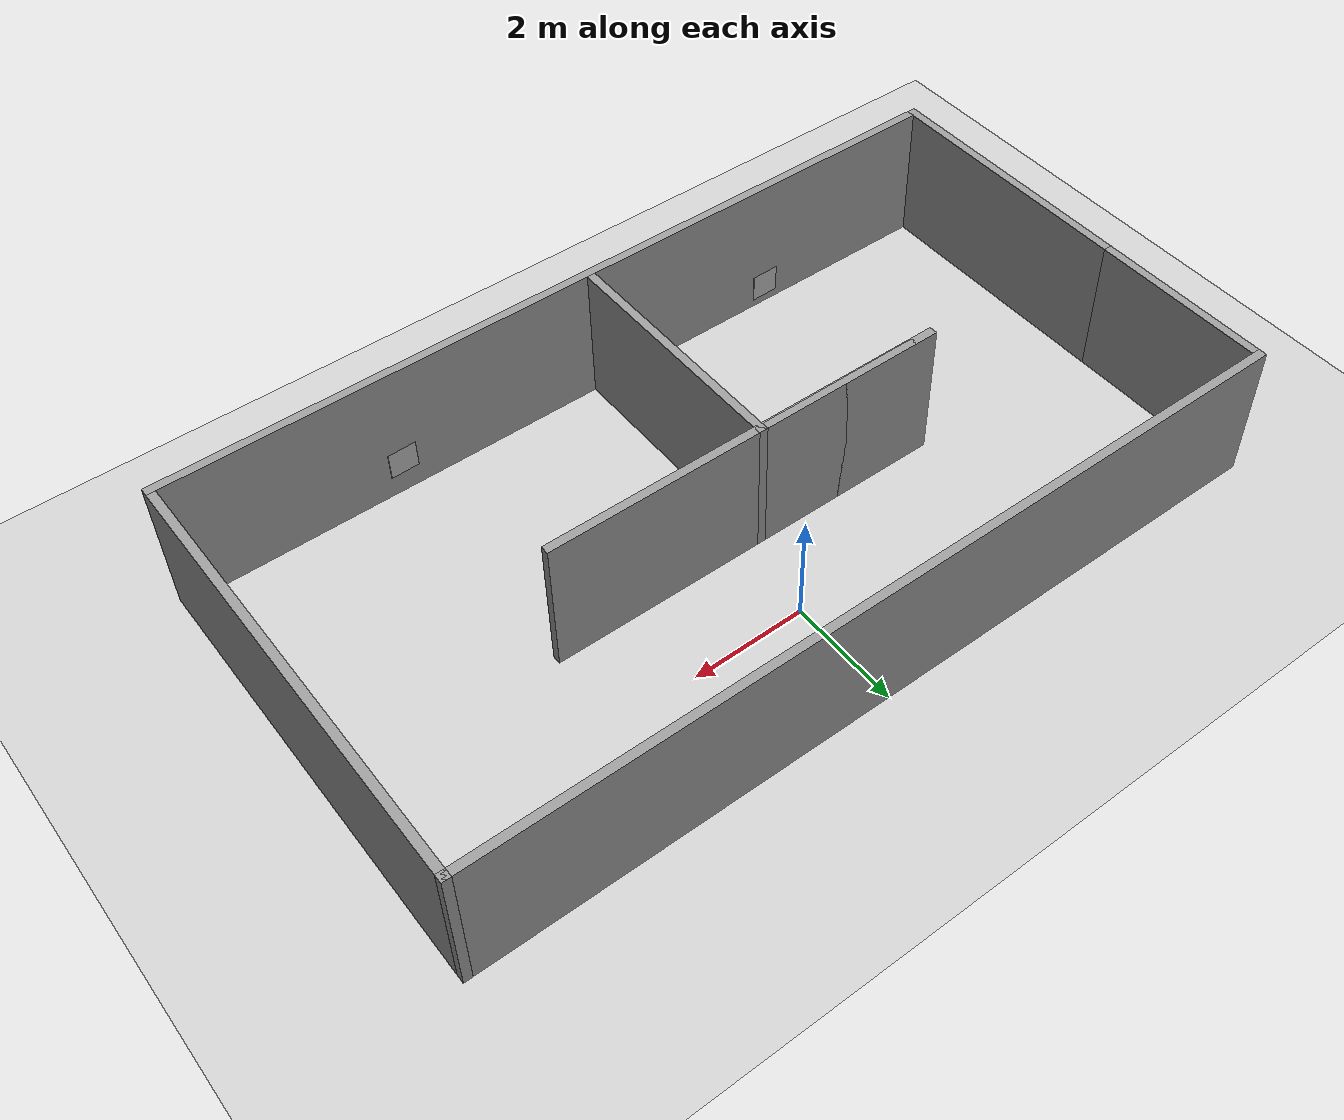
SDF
<sdf version="1.6">
 <world name="default">
  <light name="sun" type="directional">
   <pose>0 0 10 0 -0 0</pose>
   <diffuse>0.8 0.8 0.8 1</diffuse>
   <specular>0.1 0.1 0.1 1</specular>
   <attenuation>
    <range>1000</range>
    <constant>0.9</constant>
    <linear>0.01</linear>
    <quadratic>0.001</quadratic>
   </attenuation>
   <direction>-0.5 0.5 -1</direction>
  </light>
  <model name="ground_plane">
   <static>1</static>
   <link name="link">
    <collision name="collision">
     <geometry><plane><normal>0 0 1</normal><size>100 100</size></plane></geometry>
     <surface><friction><ode><mu>100</mu><mu2>50</mu2></ode></friction></surface>
    </collision>
    <visual name="visual">
     <cast_shadows>0</cast_shadows>
     <geometry><plane><normal>0 0 1</normal><size>100 100</size></plane></geometry>
     <material>
      <script><uri>file://media/materials/scripts/gazebo.material</uri><name>Gazebo/Grey</name></script>
     </material>
    </visual>
   </link>
  </model>
  <gravity>0 0 -9.8</gravity>
  <magnetic_field>6e-06 2.3e-05 -4.2e-05</magnetic_field>
  <atmosphere type="adiabatic"/>
  <physics name="default_physics" default="0" type="ode">
   <max_step_size>0.001</max_step_size>
   <real_time_factor>1</real_time_factor>
   <real_time_update_rate>1000</real_time_update_rate>
  </physics>
  <scene><ambient>0.4 0.4 0.4 1</ambient><background>0.7 0.7 0.7 1</background><shadows>1</shadows></scene>
  <spherical_coordinates>
   <surface_model>EARTH_WGS84</surface_model>
   <latitude_deg>0</latitude_deg>
   <longitude_deg>0</longitude_deg>
   <elevation>0</elevation>
   <heading_deg>0</heading_deg>
  </spherical_coordinates>
  <model name="rooms">
   <pose>-0.082404 -1.99979 0 0 -0 0</pose>
   <link name="Wall_10">
    <collision name="Wall_10_Collision">
     <geometry><box><size>4.5 0.15 2.5</size></box></geometry>
     <pose>0 0 1.25 0 -0 0</pose>
    </collision>
    <visual name="Wall_10_Visual">
     <pose>0 0 1.25 0 -0 0</pose>
     <geometry><box><size>4.5 0.15 2.5</size></box></geometry>
     <material>
      <script><uri>file://media/materials/scripts/gazebo.material</uri><name>Gazebo/Grey</name></script>
      <ambient>1 1 1 1</ambient>
     </material>
    </visual>
    <pose>-0.321969 -1.71296 0 0 -0 1.5708</pose>
   </link>
   <link name="Wall_11">
    <collision name="Wall_11_Collision">
     <geometry><box><size>3.5 0.15 2.5</size></box></geometry>
     <pose>0 0 1.25 0 -0 0</pose>
    </collision>
    <visual name="Wall_11_Visual">
     <pose>0 0 1.25 0 -0 0</pose>
     <geometry><box><size>3.5 0.15 2.5</size></box></geometry>
     <material>
      <script><uri>file://media/materials/scripts/gazebo.material</uri><name>Gazebo/Grey</name></script>
      <ambient>1 1 1 1</ambient>
     </material>
    </visual>
    <pose>-1.99697 0.462036 0 0 -0 3.14159</pose>
   </link>
   <link name="Wall_12">
    <collision name="Wall_12_Collision">
     <geometry><box><size>7.25 0.15 2.5</size></box></geometry>
     <pose>0 0 1.25 0 -0 0</pose>
    </collision>
    <visual name="Wall_12_Visual">
     <pose>0 0 1.25 0 -0 0</pose>
     <geometry><box><size>7.25 0.15 2.5</size></box></geometry>
     <material>
      <script><uri>file://media/materials/scripts/gazebo.material</uri><name>Gazebo/Grey</name></script>
      <ambient>1 1 1 1</ambient>
     </material>
    </visual>
    <pose>-0.121969 0.462036 0 0 -0 0</pose>
   </link>
   <link name="Wall_3">
    <collision name="Wall_3_Collision">
     <geometry><box><size>4.75 0.15 2.5</size></box></geometry>
     <pose>0 0 1.25 0 -0 0</pose>
    </collision>
    <visual name="Wall_3_Visual">
     <pose>0 0 1.25 0 -0 0</pose>
     <geometry><box><size>4.75 0.15 2.5</size></box></geometry>
     <material>
      <script><uri>file://media/materials/scripts/gazebo.material</uri><name>Gazebo/Grey</name></script>
      <ambient>1 1 1 1</ambient>
     </material>
    </visual>
    <pose>-7.3 -1.625 0 0 0 -1.5708</pose>
   </link>
   <link name="Wall_4">
    <collision name="Wall_4_Collision">
     <geometry><box><size>14.75 0.15 2.5</size></box></geometry>
     <pose>0 0 1.25 0 -0 0</pose>
    </collision>
    <visual name="Wall_4_Visual">
     <pose>0 0 1.25 0 -0 0</pose>
     <geometry><box><size>14.75 0.15 2.5</size></box></geometry>
     <material>
      <script><uri>file://media/materials/scripts/gazebo.material</uri><name>Gazebo/Grey</name></script>
      <ambient>1 1 1 1</ambient>
     </material>
    </visual>
    <pose>0 -3.925 0 0 -0 0</pose>
   </link>
   <link name="Wall_5">
    <collision name="Wall_5_Collision">
     <geometry><box><size>8 0.15 2.5</size></box></geometry>
     <pose>0 0 1.25 0 -0 0</pose>
    </collision>
    <visual name="Wall_5_Visual">
     <pose>0 0 1.25 0 -0 0</pose>
     <geometry><box><size>8 0.15 2.5</size></box></geometry>
     <material>
      <script><uri>file://media/materials/scripts/gazebo.material</uri><name>Gazebo/Grey</name></script>
      <ambient>1 1 1 1</ambient>
     </material>
    </visual>
    <pose>7.3 0 0 0 -0 1.5708</pose>
   </link>
   <link name="Wall_6">
    <collision name="Wall_6_Collision">
     <geometry><box><size>14.7503 0.15 2.5</size></box></geometry>
     <pose>0 0 1.25 0 -0 0</pose>
    </collision>
    <visual name="Wall_6_Visual">
     <pose>0 0 1.25 0 -0 0</pose>
     <geometry><box><size>14.7503 0.15 2.5</size></box></geometry>
     <material>
      <script><uri>file://media/materials/scripts/gazebo.material</uri><name>Gazebo/Grey</name></script>
      <ambient>1 1 1 1</ambient>
     </material>
    </visual>
    <pose>0 3.925 0 0 -0 3.14159</pose>
   </link>
   <link name="Wall_8">
    <collision name="Wall_8_Collision">
     <geometry><box><size>3.4 0.15 2.5</size></box></geometry>
     <pose>0 0 1.25 0 -0 0</pose>
    </collision>
    <visual name="Wall_8_Visual">
     <pose>0 0 1.25 0 -0 0</pose>
     <geometry><box><size>3.4 0.15 2.5</size></box></geometry>
     <material>
      <script><uri>file://media/materials/scripts/gazebo.material</uri><name>Gazebo/Grey</name></script>
      <ambient>1 1 1 1</ambient>
     </material>
    </visual>
    <pose>-7.3 2.3 0 0 -0 1.5708</pose>
   </link>
   <static>1</static>
  </model>
  <model name="Marker0">
   <static>1</static>
   <link name="link">
    <visual name="visual">
     <geometry><mesh><uri>model://marker0/meshes/Marker0.dae</uri><scale>1 1 1</scale></mesh></geometry>
    </visual>
   </link>
   <pose>-1.1631 1.543 0.307983 0 0 -1.50917</pose>
  </model>
  <model name="Marker1">
   <static>1</static>
   <link name="link">
    <visual name="visual">
     <geometry><mesh><uri>model://marker1/meshes/Marker1.dae</uri><scale>1 1 1</scale></mesh></geometry>
    </visual>
   </link>
   <pose>-3.898 -5.72482 0.287174 0 -0 1.5896</pose>
  </model>
  <model name="Marker2">
   <static>1</static>
   <link name="link">
    <visual name="visual">
     <geometry><mesh><uri>model://marker2/meshes/Marker2.dae</uri><scale>1 1 1</scale></mesh></geometry>
    </visual>
   </link>
   <pose>3.42094 -5.67272 0.599798 0 -0 1.59791</pose>
  </model>
 </world>
</sdf>
